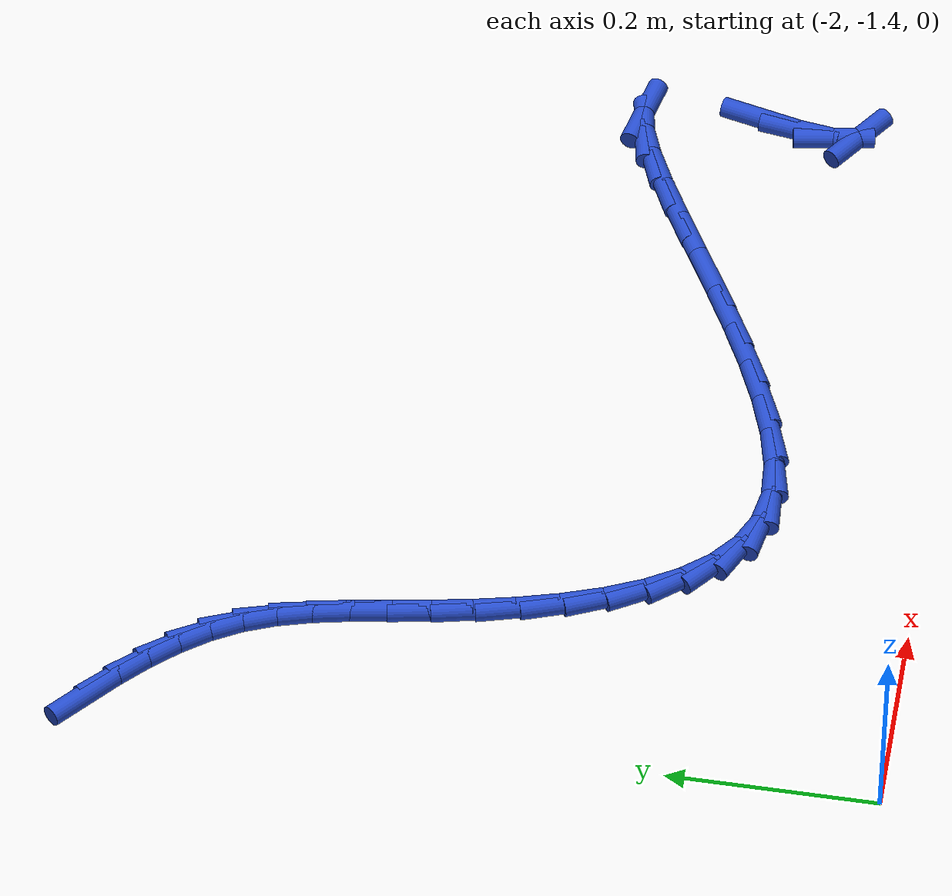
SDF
<sdf version="1.6">
 <world name="default">
  <model name="ground_plane">
   <static>1</static>
   <link name="link">
    <collision name="collision">
     <geometry><plane><normal>0 0 1</normal><size>100 100</size></plane></geometry>
     <surface><friction><ode><mu>100</mu><mu2>50</mu2></ode></friction></surface>
    </collision>
    <visual name="visual">
     <cast_shadows>0</cast_shadows>
     <geometry><plane><normal>0 0 1</normal><size>100 100</size></plane></geometry>
     <material>
      <script><uri>file://media/materials/scripts/gazebo.material</uri><name>Gazebo/WhiteGlow</name></script>
     </material>
    </visual>
   </link>
  </model>
  <model name="line">
   <link name="link_128">
    <pose>-2.000956821441964 -0.6596432930436557 0.01 0 1.57 -0.7049552539883398</pose>
    <collision name="collision">
     <geometry><cylinder><radius>0.01</radius><length>0.08</length></cylinder></geometry>
    </collision>
    <visual name="visual">
     <material>
      <script><name>Gazebo/Blue</name><uri>file://media/materials/scripts/gazebo.material</uri></script>
     </material>
     <geometry><cylinder><radius>0.01</radius><length>0.08</length></cylinder></geometry>
    </visual>
   </link>
   <link name="link_129">
    <pose>-1.9739883744699542 -0.6825879050894296 0.01 0 1.57 -0.7598337302911968</pose>
    <collision name="collision">
     <geometry><cylinder><radius>0.01</radius><length>0.08</length></cylinder></geometry>
    </collision>
    <visual name="visual">
     <material>
      <script><name>Gazebo/Blue</name><uri>file://media/materials/scripts/gazebo.material</uri></script>
     </material>
     <geometry><cylinder><radius>0.01</radius><length>0.08</length></cylinder></geometry>
    </visual>
   </link>
   <link name="link_130">
    <pose>-1.948982170632301 -0.7063471755687993 0.01 0 1.57 -0.8345402283226289</pose>
    <collision name="collision">
     <geometry><cylinder><radius>0.01</radius><length>0.08</length></cylinder></geometry>
    </collision>
    <visual name="visual">
     <material>
      <script><name>Gazebo/Blue</name><uri>file://media/materials/scripts/gazebo.material</uri></script>
     </material>
     <geometry><cylinder><radius>0.01</radius><length>0.08</length></cylinder></geometry>
    </visual>
   </link>
   <link name="link_131">
    <pose>-1.9264172681500158 -0.7312464448864955 0.01 0 1.57 -0.9304319410171913</pose>
    <collision name="collision">
     <geometry><cylinder><radius>0.01</radius><length>0.08</length></cylinder></geometry>
    </collision>
    <visual name="visual">
     <material>
      <script><name>Gazebo/Blue</name><uri>file://media/materials/scripts/gazebo.material</uri></script>
     </material>
     <geometry><cylinder><radius>0.01</radius><length>0.08</length></cylinder></geometry>
    </visual>
   </link>
   <link name="link_132">
    <pose>-1.9067727252441142 -0.7576110534472467 0.01 0 1.57 -1.047472981555279</pose>
    <collision name="collision">
     <geometry><cylinder><radius>0.01</radius><length>0.08</length></cylinder></geometry>
    </collision>
    <visual name="visual">
     <material>
      <script><name>Gazebo/Blue</name><uri>file://media/materials/scripts/gazebo.material</uri></script>
     </material>
     <geometry><cylinder><radius>0.01</radius><length>0.08</length></cylinder></geometry>
    </visual>
   </link>
   <link name="link_133">
    <pose>-1.890527600135607 -0.7857663416557831 0.01 0 1.57 -1.1787886697070409</pose>
    <collision name="collision">
     <geometry><cylinder><radius>0.01</radius><length>0.08</length></cylinder></geometry>
    </collision>
    <visual name="visual">
     <material>
      <script><name>Gazebo/Blue</name><uri>file://media/materials/scripts/gazebo.material</uri></script>
     </material>
     <geometry><cylinder><radius>0.01</radius><length>0.08</length></cylinder></geometry>
    </visual>
   </link>
   <link name="link_134">
    <pose>-1.878029038543334 -0.8159996472292486 0.01 0 1.57 -1.2882751294646377</pose>
    <collision name="collision">
     <geometry><cylinder><radius>0.01</radius><length>0.08</length></cylinder></geometry>
    </collision>
    <visual name="visual">
     <material>
      <script><name>Gazebo/Blue</name><uri>file://media/materials/scripts/gazebo.material</uri></script>
     </material>
     <geometry><cylinder><radius>0.01</radius><length>0.08</length></cylinder></geometry>
    </visual>
   </link>
   <link name="link_135">
    <pose>-1.8686477613305656 -0.8483170095383374 0.01 0 1.57 -1.360106699638822</pose>
    <collision name="collision">
     <geometry><cylinder><radius>0.01</radius><length>0.08</length></cylinder></geometry>
    </collision>
    <visual name="visual">
     <material>
      <script><name>Gazebo/Blue</name><uri>file://media/materials/scripts/gazebo.material</uri></script>
     </material>
     <geometry><cylinder><radius>0.01</radius><length>0.08</length></cylinder></geometry>
    </visual>
   </link>
   <link name="link_136">
    <pose>-1.8613162616679815 -0.8825982188884997 0.01 0 1.57 -1.3967566532342506</pose>
    <collision name="collision">
     <geometry><cylinder><radius>0.01</radius><length>0.08</length></cylinder></geometry>
    </collision>
    <visual name="visual">
     <material>
      <script><name>Gazebo/Blue</name><uri>file://media/materials/scripts/gazebo.material</uri></script>
     </material>
     <geometry><cylinder><radius>0.01</radius><length>0.08</length></cylinder></geometry>
    </visual>
   </link>
   <link name="link_137">
    <pose>-1.8549649529136354 -0.9187224664117343 0.01 0 1.57 -1.4022314602693966</pose>
    <collision name="collision">
     <geometry><cylinder><radius>0.01</radius><length>0.08</length></cylinder></geometry>
    </collision>
    <visual name="visual">
     <material>
      <script><name>Gazebo/Blue</name><uri>file://media/materials/scripts/gazebo.material</uri></script>
     </material>
     <geometry><cylinder><radius>0.01</radius><length>0.08</length></cylinder></geometry>
    </visual>
   </link>
   <link name="link_138">
    <pose>-1.8485242484255786 -0.956568943240039 0.01 0 1.57 -1.3810732892799709</pose>
    <collision name="collision">
     <geometry><cylinder><radius>0.01</radius><length>0.08</length></cylinder></geometry>
    </collision>
    <visual name="visual">
     <material>
      <script><name>Gazebo/Blue</name><uri>file://media/materials/scripts/gazebo.material</uri></script>
     </material>
     <geometry><cylinder><radius>0.01</radius><length>0.08</length></cylinder></geometry>
    </visual>
   </link>
   <link name="link_139">
    <pose>-1.8409574970521587 -0.9959724067469522 0.01 0 1.57 -1.3434561716532414</pose>
    <collision name="collision">
     <geometry><cylinder><radius>0.01</radius><length>0.08</length></cylinder></geometry>
    </collision>
    <visual name="visual">
     <material>
      <script><name>Gazebo/Blue</name><uri>file://media/materials/scripts/gazebo.material</uri></script>
     </material>
     <geometry><cylinder><radius>0.01</radius><length>0.08</length></cylinder></geometry>
    </visual>
   </link>
   <link name="link_140">
    <pose>-1.8316523979345931 -1.0361951170318697 0.01 0 1.57 -1.2934453714427332</pose>
    <collision name="collision">
     <geometry><cylinder><radius>0.01</radius><length>0.08</length></cylinder></geometry>
    </collision>
    <visual name="visual">
     <material>
      <script><name>Gazebo/Blue</name><uri>file://media/materials/scripts/gazebo.material</uri></script>
     </material>
     <geometry><cylinder><radius>0.01</radius><length>0.08</length></cylinder></geometry>
    </visual>
   </link>
   <link name="link_141">
    <pose>-1.820291498986867 -1.0761015493416104 0.01 0 1.57 -1.227835377422527</pose>
    <collision name="collision">
     <geometry><cylinder><radius>0.01</radius><length>0.08</length></cylinder></geometry>
    </collision>
    <visual name="visual">
     <material>
      <script><name>Gazebo/Blue</name><uri>file://media/materials/scripts/gazebo.material</uri></script>
     </material>
     <geometry><cylinder><radius>0.01</radius><length>0.08</length></cylinder></geometry>
    </visual>
   </link>
   <link name="link_142">
    <pose>-1.8065633021483434 -1.1145481462590425 0.01 0 1.57 -1.1415216151536287</pose>
    <collision name="collision">
     <geometry><cylinder><radius>0.01</radius><length>0.08</length></cylinder></geometry>
    </collision>
    <visual name="visual">
     <material>
      <script><name>Gazebo/Blue</name><uri>file://media/materials/scripts/gazebo.material</uri></script>
     </material>
     <geometry><cylinder><radius>0.01</radius><length>0.08</length></cylinder></geometry>
    </visual>
   </link>
   <link name="link_143">
    <pose>-1.7901563093583843 -1.1503913503670347 0.01 0 1.57 -1.0271863568069748</pose>
    <collision name="collision">
     <geometry><cylinder><radius>0.01</radius><length>0.08</length></cylinder></geometry>
    </collision>
    <visual name="visual">
     <material>
      <script><name>Gazebo/Blue</name><uri>file://media/materials/scripts/gazebo.material</uri></script>
     </material>
     <geometry><cylinder><radius>0.01</radius><length>0.08</length></cylinder></geometry>
    </visual>
   </link>
   <link name="link_144">
    <pose>-1.7707590225563545 -1.182487604248454 0.01 0 1.57 -0.8754591198107254</pose>
    <collision name="collision">
     <geometry><cylinder><radius>0.01</radius><length>0.08</length></cylinder></geometry>
    </collision>
    <visual name="visual">
     <material>
      <script><name>Gazebo/Blue</name><uri>file://media/materials/scripts/gazebo.material</uri></script>
     </material>
     <geometry><cylinder><radius>0.01</radius><length>0.08</length></cylinder></geometry>
    </visual>
   </link>
   <link name="link_145">
    <pose>-1.748059943681616 -1.20969335048617 0.01 0 1.57 -0.677556813992557</pose>
    <collision name="collision">
     <geometry><cylinder><radius>0.01</radius><length>0.08</length></cylinder></geometry>
    </collision>
    <visual name="visual">
     <material>
      <script><name>Gazebo/Blue</name><uri>file://media/materials/scripts/gazebo.material</uri></script>
     </material>
     <geometry><cylinder><radius>0.01</radius><length>0.08</length></cylinder></geometry>
    </visual>
   </link>
   <link name="link_146">
    <pose>-1.7217475746735327 -1.2308650316630507 0.01 0 1.57 -0.4334555114872879</pose>
    <collision name="collision">
     <geometry><cylinder><radius>0.01</radius><length>0.08</length></cylinder></geometry>
    </collision>
    <visual name="visual">
     <material>
      <script><name>Gazebo/Blue</name><uri>file://media/materials/scripts/gazebo.material</uri></script>
     </material>
     <geometry><cylinder><radius>0.01</radius><length>0.08</length></cylinder></geometry>
    </visual>
   </link>
   <link name="link_147">
    <pose>-1.6915104174714666 -1.2448590903619647 0.01 0 1.57 -0.16398582927288646</pose>
    <collision name="collision">
     <geometry><cylinder><radius>0.01</radius><length>0.08</length></cylinder></geometry>
    </collision>
    <visual name="visual">
     <material>
      <script><name>Gazebo/Blue</name><uri>file://media/materials/scripts/gazebo.material</uri></script>
     </material>
     <geometry><cylinder><radius>0.01</radius><length>0.08</length></cylinder></geometry>
    </visual>
   </link>
   <link name="link_148">
    <pose>-1.6570509168155863 -1.2505611641787584 0.01 0 1.57 0.06852379122193665</pose>
    <collision name="collision">
     <geometry><cylinder><radius>0.01</radius><length>0.08</length></cylinder></geometry>
    </collision>
    <visual name="visual">
     <material>
      <script><name>Gazebo/Blue</name><uri>file://media/materials/scripts/gazebo.material</uri></script>
     </material>
     <geometry><cylinder><radius>0.01</radius><length>0.08</length></cylinder></geometry>
    </visual>
   </link>
   <link name="link_149">
    <pose>-1.6185796288435252 -1.247920831810528 0.01 0 1.57 0.2287032514215494</pose>
    <collision name="collision">
     <geometry><cylinder><radius>0.01</radius><length>0.08</length></cylinder></geometry>
    </collision>
    <visual name="visual">
     <material>
      <script><name>Gazebo/Blue</name><uri>file://media/materials/scripts/gazebo.material</uri></script>
     </material>
     <geometry><cylinder><radius>0.01</radius><length>0.08</length></cylinder></geometry>
    </visual>
   </link>
   <link name="link_150">
    <pose>-1.5769481879880622 -1.2382300341818815 0.01 0 1.57 0.33665163737885434</pose>
    <collision name="collision">
     <geometry><cylinder><radius>0.01</radius><length>0.08</length></cylinder></geometry>
    </collision>
    <visual name="visual">
     <material>
      <script><name>Gazebo/Blue</name><uri>file://media/materials/scripts/gazebo.material</uri></script>
     </material>
     <geometry><cylinder><radius>0.01</radius><length>0.08</length></cylinder></geometry>
    </visual>
   </link>
   <link name="link_151">
    <pose>-1.5330492161195428 -1.222866536349066 0.01 0 1.57 0.4096468014077269</pose>
    <collision name="collision">
     <geometry><cylinder><radius>0.01</radius><length>0.08</length></cylinder></geometry>
    </collision>
    <visual name="visual">
     <material>
      <script><name>Gazebo/Blue</name><uri>file://media/materials/scripts/gazebo.material</uri></script>
     </material>
     <geometry><cylinder><radius>0.01</radius><length>0.08</length></cylinder></geometry>
    </visual>
   </link>
   <link name="link_152">
    <pose>-1.4877753351083116 -1.2032081033683264 0.01 0 1.57 0.4583450636944587</pose>
    <collision name="collision">
     <geometry><cylinder><radius>0.01</radius><length>0.08</length></cylinder></geometry>
    </collision>
    <visual name="visual">
     <material>
      <script><name>Gazebo/Blue</name><uri>file://media/materials/scripts/gazebo.material</uri></script>
     </material>
     <geometry><cylinder><radius>0.01</radius><length>0.08</length></cylinder></geometry>
    </visual>
   </link>
   <link name="link_153">
    <pose>-1.4420191668247175 -1.1806325002959102 0.01 0 1.57 0.4887644063790922</pose>
    <collision name="collision">
     <geometry><cylinder><radius>0.01</radius><length>0.08</length></cylinder></geometry>
    </collision>
    <visual name="visual">
     <material>
      <script><name>Gazebo/Blue</name><uri>file://media/materials/scripts/gazebo.material</uri></script>
     </material>
     <geometry><cylinder><radius>0.01</radius><length>0.08</length></cylinder></geometry>
    </visual>
   </link>
   <link name="link_154">
    <pose>-1.3966733331391044 -1.156517492188062 0.01 0 1.57 0.5037677787696573</pose>
    <collision name="collision">
     <geometry><cylinder><radius>0.01</radius><length>0.08</length></cylinder></geometry>
    </collision>
    <visual name="visual">
     <material>
      <script><name>Gazebo/Blue</name><uri>file://media/materials/scripts/gazebo.material</uri></script>
     </material>
     <geometry><cylinder><radius>0.01</radius><length>0.08</length></cylinder></geometry>
    </visual>
   </link>
   <link name="link_155">
    <pose>-1.3526304559218187 -1.1322408441010288 0.01 0 1.57 0.5036594247205288</pose>
    <collision name="collision">
     <geometry><cylinder><radius>0.01</radius><length>0.08</length></cylinder></geometry>
    </collision>
    <visual name="visual">
     <material>
      <script><name>Gazebo/Blue</name><uri>file://media/materials/scripts/gazebo.material</uri></script>
     </material>
     <geometry><cylinder><radius>0.01</radius><length>0.08</length></cylinder></geometry>
    </visual>
   </link>
   <link name="link_156">
    <pose>-1.310783157043205 -1.1091803210910558 0.01 0 1.57 0.48583278166504373</pose>
    <collision name="collision">
     <geometry><cylinder><radius>0.01</radius><length>0.08</length></cylinder></geometry>
    </collision>
    <visual name="visual">
     <material>
      <script><name>Gazebo/Blue</name><uri>file://media/materials/scripts/gazebo.material</uri></script>
     </material>
     <geometry><cylinder><radius>0.01</radius><length>0.08</length></cylinder></geometry>
    </visual>
   </link>
   <link name="link_157">
    <pose>-1.2720240583736115 -1.0887136882143902 0.01 0 1.57 0.4428686198117973</pose>
    <collision name="collision">
     <geometry><cylinder><radius>0.01</radius><length>0.08</length></cylinder></geometry>
    </collision>
    <visual name="visual">
     <material>
      <script><name>Gazebo/Blue</name><uri>file://media/materials/scripts/gazebo.material</uri></script>
     </material>
     <geometry><cylinder><radius>0.01</radius><length>0.08</length></cylinder></geometry>
    </visual>
   </link>
   <link name="link_158">
    <pose>-1.237245781783383 -1.0722187105272776 0.01 0 1.57 0.3567534814106958</pose>
    <collision name="collision">
     <geometry><cylinder><radius>0.01</radius><length>0.08</length></cylinder></geometry>
    </collision>
    <visual name="visual">
     <material>
      <script><name>Gazebo/Blue</name><uri>file://media/materials/scripts/gazebo.material</uri></script>
     </material>
     <geometry><cylinder><radius>0.01</radius><length>0.08</length></cylinder></geometry>
    </visual>
   </link>
   <link name="link_159">
    <pose>-1.2073409491428648 -1.0610731530859632 0.01 0 1.57 0.1810364564139412</pose>
    <collision name="collision">
     <geometry><cylinder><radius>0.01</radius><length>0.08</length></cylinder></geometry>
    </collision>
    <visual name="visual">
     <material>
      <script><name>Gazebo/Blue</name><uri>file://media/materials/scripts/gazebo.material</uri></script>
     </material>
     <geometry><cylinder><radius>0.01</radius><length>0.08</length></cylinder></geometry>
    </visual>
   </link>
   <link name="link_160">
    <pose>-1.183202182322403 -1.056654780946694 0.01 0 1.57 -0.20785564183766356</pose>
    <collision name="collision">
     <geometry><cylinder><radius>0.01</radius><length>0.08</length></cylinder></geometry>
    </collision>
    <visual name="visual">
     <material>
      <script><name>Gazebo/Blue</name><uri>file://media/materials/scripts/gazebo.material</uri></script>
     </material>
     <geometry><cylinder><radius>0.01</radius><length>0.08</length></cylinder></geometry>
    </visual>
   </link>
   <link name="link_165">
    <pose>-1.1708596750671607 -1.171518920922871 0.01 0 1.57 1.328212270717135</pose>
    <collision name="collision">
     <geometry><cylinder><radius>0.01</radius><length>0.08</length></cylinder></geometry>
    </collision>
    <visual name="visual">
     <material>
      <script><name>Gazebo/Blue</name><uri>file://media/materials/scripts/gazebo.material</uri></script>
     </material>
     <geometry><cylinder><radius>0.01</radius><length>0.08</length></cylinder></geometry>
    </visual>
   </link>
   <link name="link_166">
    <pose>-1.1806952606366323 -1.211265526342054 0.01 0 1.57 1.4233231203214822</pose>
    <collision name="collision">
     <geometry><cylinder><radius>0.01</radius><length>0.08</length></cylinder></geometry>
    </collision>
    <visual name="visual">
     <material>
      <script><name>Gazebo/Blue</name><uri>file://media/materials/scripts/gazebo.material</uri></script>
     </material>
     <geometry><cylinder><radius>0.01</radius><length>0.08</length></cylinder></geometry>
    </visual>
   </link>
   <link name="link_167">
    <pose>-1.1858047319349152 -1.2456607683795038 0.01 0 1.57 -1.4072184116822548</pose>
    <collision name="collision">
     <geometry><cylinder><radius>0.01</radius><length>0.08</length></cylinder></geometry>
    </collision>
    <visual name="visual">
     <material>
      <script><name>Gazebo/Blue</name><uri>file://media/materials/scripts/gazebo.material</uri></script>
     </material>
     <geometry><cylinder><radius>0.01</radius><length>0.08</length></cylinder></geometry>
    </visual>
   </link>
   <link name="link_168">
    <pose>-1.1818945842660291 -1.2693510674664212 0.01 0 1.57 -0.6021880161585056</pose>
    <collision name="collision">
     <geometry><cylinder><radius>0.01</radius><length>0.08</length></cylinder></geometry>
    </collision>
    <visual name="visual">
     <material>
      <script><name>Gazebo/Blue</name><uri>file://media/materials/scripts/gazebo.material</uri></script>
     </material>
     <geometry><cylinder><radius>0.01</radius><length>0.08</length></cylinder></geometry>
    </visual>
   </link>
  </model>
 </world>
</sdf>
